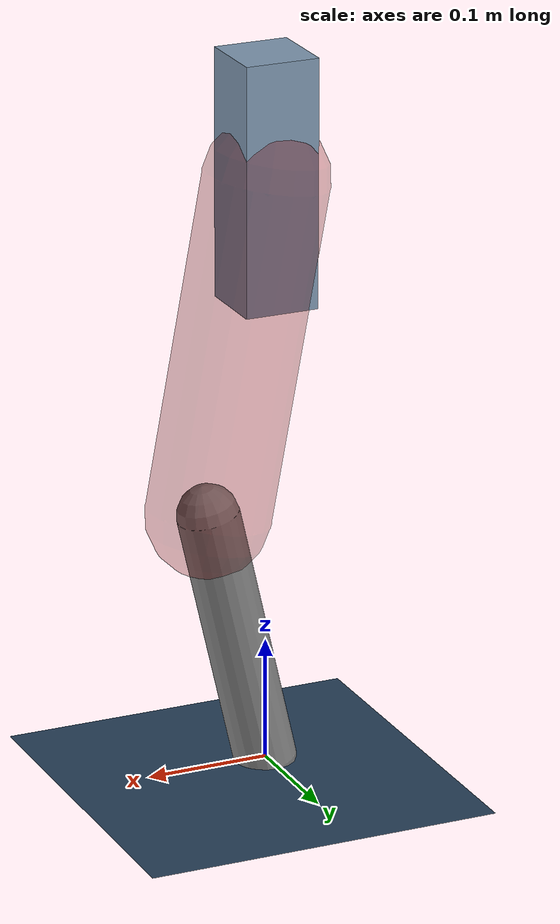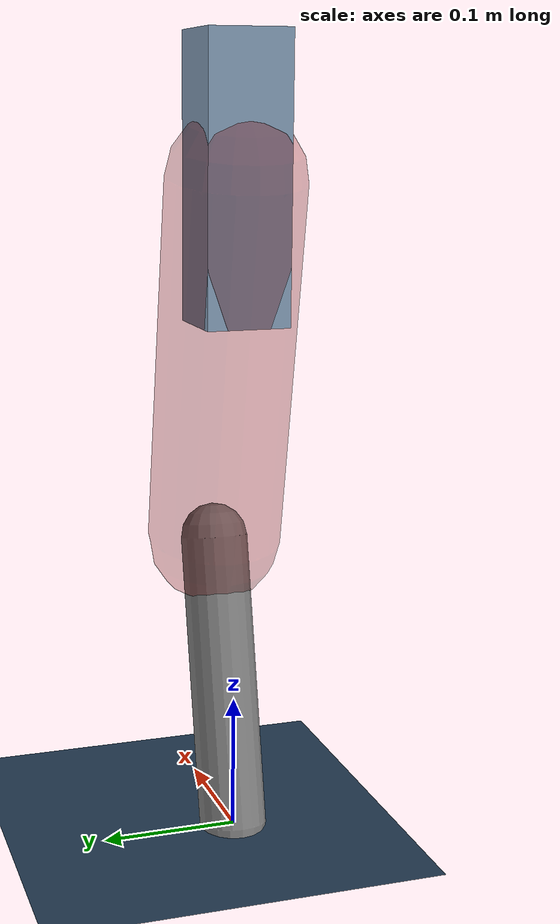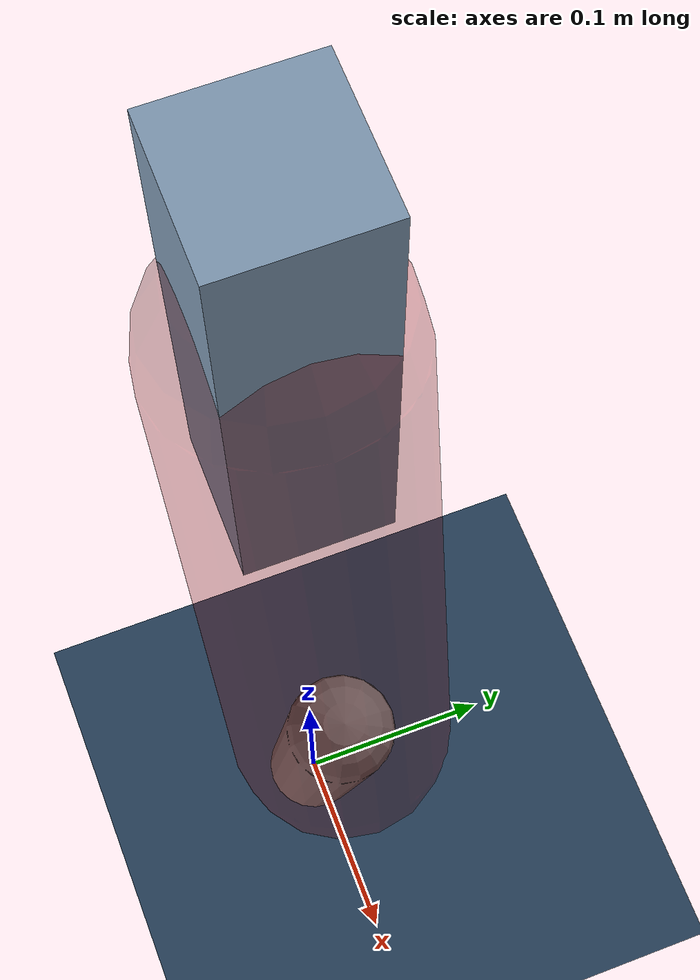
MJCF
<mujoco model="Hopper2D">
	<compiler inertiafromgeom="true" angle="radian" />
	<option timestep="0.001" integrator="implicit" cone="elliptic" solver="Newton" tolerance="1e-10" />

	<default>
		<geom contype="1" conaffinity="1" condim="3" friction="2 0.005 0.0001" solref="0.005 1" />
		<joint limited="true" damping="0.1" />
	</default>

	<asset>
		<texture name="skybox" type="skybox" builtin="gradient" rgb1=".4 .6 .8" rgb2="0 0 0" width="800" height="800" />
		<texture name="grid" type="2d" builtin="checker" rgb1=".1 .2 .3" rgb2=".2 .3 .4" width="300" height="300" mark="edge" markrgb=".2 .3 .4" />
		<material name="ground" texture="grid" texrepeat="1 1" texuniform="true" reflectance="0.1" />
		<material name="leg" rgba="0.5 0.6 0.7 1" />
	</asset>

	<worldbody>

		<geom name="floor" type="plane" size="5 5 0.25" material="ground" />

		<light directional="false" diffuse="0.8 0.8 0.8" specular="0.3 0.3 0.3" pos="0 0 2" dir="0 0 -1" />
		<light mode="targetbodycom" target="base" directional="false" diffuse="0.8 0.8 0.8" specular="0.3 0.3 0.3" pos="0 0 2" dir="0 0 -1" />

		<camera name="fixed" pos="0 -2 1" xyaxes="1 0 0 0 0 1" />
		<camera name="tracking" mode="trackcom" pos="0 -3 1" />

		<body name="root" pos="0 0 0.48125533014134325">
			<joint name="slide_x" type="slide" axis="1 0 0" range="-100 100" />
			<joint name="slide_z" type="slide" axis="0 0 1" range="0 10" />

			<body name="base" pos="0 0 0">
				<geom name="torso" type="box" size="0.03 0.03 0.1" mass="2.346" material="leg" />

				<body name="link1" pos="0 0 0" euler="0 1.3898142908805378 0">
					<joint type="hinge" axis="0 -1 0" pos="0 0 0" name="hinge1" limited="true" range="-3.14 3.14" stiffness="0" damping="0.1" />
					<geom name="thigh" type="capsule" fromto="0 0 0 0.2722571607372247 0 0" size="0.05" rgba="0.5 0 0 0.3" mass="0.9145943339905067" />

					<body name="link2" pos="0.2722571607372247 0 0" euler="0 0.40666235334630435 0">
						<joint type="hinge" axis="0 -1 0" pos="0 0 0" name="hinge2" limited="true" range="-3.14 3.14" stiffness="0" damping="0.1" />
						<geom name="shank" type="capsule" fromto="0 0 0 0.21899816940411854 0 0" size="0.025" mass="0.4167985355232948" />

					</body>
				</body>
			</body>
		</body>
	</worldbody>

	<actuator>
		<motor name="torque1" joint="hinge1" ctrlrange="-65.57808613362492 65.57808613362492" ctrllimited="true" gear="1" />
		<motor name="torque2" joint="hinge2" ctrlrange="-80.70673258135294 80.70673258135294" ctrllimited="true" gear="1" />
	</actuator>
</mujoco>
